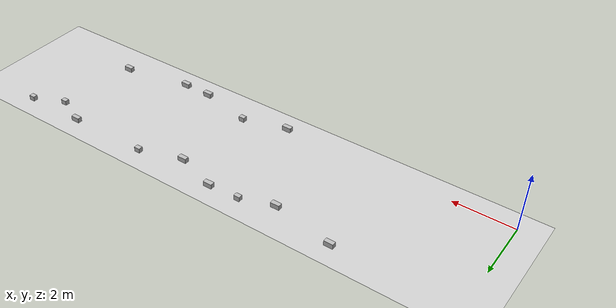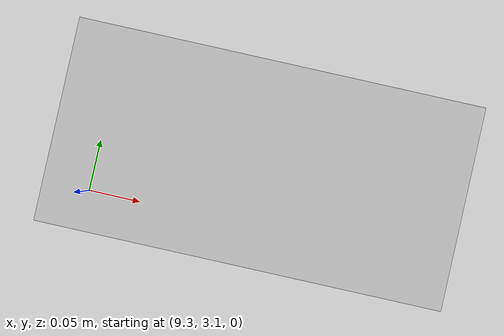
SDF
<sdf version="1.7">
 <world name="test-obstacles">
  <model name="track">
   <static>1</static>
   <link name="track">
    <collision name="collision">
     <geometry><plane><normal>0 0 1</normal><size>20 10</size></plane></geometry>
     <surface><friction><ode><mu>100</mu><mu2>50</mu2></ode></friction></surface>
    </collision>
    <visual name="visual">
     <cast_shadows>0</cast_shadows>
     <geometry><plane><normal>0 0 1</normal><size>20 5</size></plane></geometry>
     <material>
      <script>
       <uri>model://test-parking/materials/scripts</uri>
       <uri>model://test-parking/materials/textures</uri>
       <name>basic_track/Image</name>
      </script>
     </material>
    </visual>
   </link>
   <pose>9.18 1.8 0 0 -0 0</pose>
  </model>
  <light name="sun" type="directional">
   <pose>0 0 10 0 -0 0</pose>
   <diffuse>0.8 0.8 0.8 1</diffuse>
   <specular>0.2 0.2 0.2 1</specular>
   <attenuation>
    <range>1000</range>
    <constant>0.9</constant>
    <linear>0.01</linear>
    <quadratic>0.001</quadratic>
   </attenuation>
   <direction>-0.5 0.1 -0.9</direction>
   <spot><inner_angle>0</inner_angle><outer_angle>0</outer_angle><falloff>0</falloff></spot>
  </light>
  <gravity>0 0 -9.8</gravity>
  <magnetic_field>6e-06 2.3e-05 -4.2e-05</magnetic_field>
  <atmosphere type="adiabatic"/>
  <physics type="ode">
   <max_step_size>0.001</max_step_size>
   <real_time_factor>1</real_time_factor>
   <real_time_update_rate>1000</real_time_update_rate>
  </physics>
  <scene><ambient>0.4 0.4 0.4 1</ambient><background>0.7 0.7 0.7 1</background><shadows>1</shadows></scene>
  <spherical_coordinates>
   <surface_model>EARTH_WGS84</surface_model>
   <latitude_deg>0</latitude_deg>
   <longitude_deg>0</longitude_deg>
   <elevation>0</elevation>
   <heading_deg>0</heading_deg>
  </spherical_coordinates>
  <model name="box">
   <pose>7.74918 -0.001585 0 0 -0 0</pose>
   <static>1</static>
   <link name="link">
    <inertial>
     <mass>1</mass>
     <inertia><ixx>0.083</ixx><ixy>0</ixy><ixz>0</ixz><iyy>0.083</iyy><iyz>0</iyz><izz>0.083</izz></inertia>
    </inertial>
    <collision name="collision"><geometry><box><size>0.3 0.15 0.3</size></box></geometry></collision>
    <visual name="visual">
     <material><script><uri>__default__</uri><name>__default__</name></script></material>
     <geometry><box><size>0.3 0.15 0.3</size></box></geometry>
    </visual>
   </link>
  </model>
  <model name="box_0">
   <pose>9.2239 0.419035 0 0 -0 0</pose>
   <static>1</static>
   <link name="link">
    <inertial>
     <mass>1</mass>
     <inertia><ixx>0.083</ixx><ixy>0</ixy><ixz>0</ixz><iyy>0.083</iyy><iyz>0</iyz><izz>0.083</izz></inertia>
    </inertial>
    <collision name="collision"><geometry><box><size>0.2 0.15 0.3</size></box></geometry></collision>
    <visual name="visual">
     <material><script><uri>__default__</uri><name>__default__</name></script></material>
     <geometry><box><size>0.2 0.15 0.3</size></box></geometry>
    </visual>
   </link>
  </model>
  <model name="box_1">
   <pose>10.9921 0.00085 0 0 -0 0</pose>
   <static>1</static>
   <link name="link">
    <inertial>
     <mass>1</mass>
     <inertia><ixx>0.083</ixx><ixy>0</ixy><ixz>0</ixz><iyy>0.083</iyy><iyz>0</iyz><izz>0.083</izz></inertia>
    </inertial>
    <collision name="collision"><geometry><box><size>0.3 0.15 0.3</size></box></geometry></collision>
    <visual name="visual">
     <material><script><uri>__default__</uri><name>__default__</name></script></material>
     <geometry><box><size>0.3 0.15 0.3</size></box></geometry>
    </visual>
   </link>
  </model>
  <model name="box_2">
   <pose>11.9553 -0.016099 0 0 -0 0</pose>
   <static>1</static>
   <link name="link">
    <inertial>
     <mass>1</mass>
     <inertia><ixx>0.083</ixx><ixy>0</ixy><ixz>0</ixz><iyy>0.083</iyy><iyz>0</iyz><izz>0.083</izz></inertia>
    </inertial>
    <collision name="collision"><geometry><box><size>0.3 0.15 0.3</size></box></geometry></collision>
    <visual name="visual">
     <material><script><uri>__default__</uri><name>__default__</name></script></material>
     <geometry><box><size>0.3 0.15 0.3</size></box></geometry>
    </visual>
   </link>
  </model>
  <model name="box_3">
   <pose>14.2173 0.402956 0 0 -0 0</pose>
   <static>1</static>
   <link name="link">
    <inertial>
     <mass>1</mass>
     <inertia><ixx>0.083</ixx><ixy>0</ixy><ixz>0</ixz><iyy>0.083</iyy><iyz>0</iyz><izz>0.083</izz></inertia>
    </inertial>
    <collision name="collision"><geometry><box><size>0.3 0.15 0.3</size></box></geometry></collision>
    <visual name="visual">
     <material><script><uri>__default__</uri><name>__default__</name></script></material>
     <geometry><box><size>0.3 0.15 0.3</size></box></geometry>
    </visual>
   </link>
  </model>
  <model name="box_4">
   <pose>15.6159 3.62233 0 0 -0 0</pose>
   <static>1</static>
   <link name="link">
    <inertial>
     <mass>1</mass>
     <inertia><ixx>0.083</ixx><ixy>0</ixy><ixz>0</ixz><iyy>0.083</iyy><iyz>0</iyz><izz>0.083</izz></inertia>
    </inertial>
    <collision name="collision"><geometry><box><size>0.2 0.15 0.3</size></box></geometry></collision>
    <visual name="visual">
     <material><script><uri>__default__</uri><name>__default__</name></script></material>
     <geometry><box><size>0.2 0.15 0.3</size></box></geometry>
    </visual>
   </link>
  </model>
  <model name="box_5">
   <pose>14.5763 3.16548 0 0 -0 0</pose>
   <static>1</static>
   <link name="link">
    <inertial>
     <mass>1</mass>
     <inertia><ixx>0.083</ixx><ixy>0</ixy><ixz>0</ixz><iyy>0.083</iyy><iyz>0</iyz><izz>0.083</izz></inertia>
    </inertial>
    <collision name="collision"><geometry><box><size>0.2 0.15 0.3</size></box></geometry></collision>
    <visual name="visual">
     <material><script><uri>__default__</uri><name>__default__</name></script></material>
     <geometry><box><size>0.2 0.15 0.3</size></box></geometry>
    </visual>
   </link>
  </model>
  <model name="box_6">
   <pose>13.5813 3.61876 0 0 -0 0</pose>
   <static>1</static>
   <link name="link">
    <inertial>
     <mass>1</mass>
     <inertia><ixx>0.083</ixx><ixy>0</ixy><ixz>0</ixz><iyy>0.083</iyy><iyz>0</iyz><izz>0.083</izz></inertia>
    </inertial>
    <collision name="collision"><geometry><box><size>0.3 0.15 0.3</size></box></geometry></collision>
    <visual name="visual">
     <material><script><uri>__default__</uri><name>__default__</name></script></material>
     <geometry><box><size>0.3 0.15 0.3</size></box></geometry>
    </visual>
   </link>
  </model>
  <model name="box_7">
   <pose>10.8827 3.61183 0 0 -0 0</pose>
   <static>1</static>
   <link name="link">
    <inertial>
     <mass>1</mass>
     <inertia><ixx>0.083</ixx><ixy>0</ixy><ixz>0</ixz><iyy>0.083</iyy><iyz>0</iyz><izz>0.083</izz></inertia>
    </inertial>
    <collision name="collision"><geometry><box><size>0.2 0.15 0.3</size></box></geometry></collision>
    <visual name="visual">
     <material><script><uri>__default__</uri><name>__default__</name></script></material>
     <geometry><box><size>0.2 0.15 0.3</size></box></geometry>
    </visual>
   </link>
  </model>
  <model name="box_8">
   <pose>9.45563 3.16006 0 0 -0 0</pose>
   <static>1</static>
   <link name="link">
    <inertial>
     <mass>1</mass>
     <inertia><ixx>0.083</ixx><ixy>0</ixy><ixz>0</ixz><iyy>0.083</iyy><iyz>0</iyz><izz>0.083</izz></inertia>
    </inertial>
    <collision name="collision"><geometry><box><size>0.3 0.15 0.3</size></box></geometry></collision>
    <visual name="visual">
     <material><script><uri>__default__</uri><name>__default__</name></script></material>
     <geometry><box><size>0.3 0.15 0.3</size></box></geometry>
    </visual>
   </link>
  </model>
  <model name="box_9">
   <pose>8.09285 3.61922 0 0 -0 0</pose>
   <static>1</static>
   <link name="link">
    <inertial>
     <mass>1</mass>
     <inertia><ixx>0.083</ixx><ixy>0</ixy><ixz>0</ixz><iyy>0.083</iyy><iyz>0</iyz><izz>0.083</izz></inertia>
    </inertial>
    <collision name="collision"><geometry><box><size>0.3 0.15 0.3</size></box></geometry></collision>
    <visual name="visual">
     <material><script><uri>__default__</uri><name>__default__</name></script></material>
     <geometry><box><size>0.3 0.15 0.3</size></box></geometry>
    </visual>
   </link>
  </model>
  <model name="box_10">
   <pose>7.04654 3.57454 0 0 -0 0</pose>
   <static>1</static>
   <link name="link">
    <inertial>
     <mass>1</mass>
     <inertia><ixx>0.083</ixx><ixy>0</ixy><ixz>0</ixz><iyy>0.083</iyy><iyz>0</iyz><izz>0.083</izz></inertia>
    </inertial>
    <collision name="collision"><geometry><box><size>0.2 0.15 0.3</size></box></geometry></collision>
    <visual name="visual">
     <material><script><uri>__default__</uri><name>__default__</name></script></material>
     <geometry><box><size>0.2 0.15 0.3</size></box></geometry>
    </visual>
   </link>
  </model>
  <model name="box_11">
   <pose>5.96311 3.20094 0 0 -0 0</pose>
   <static>1</static>
   <link name="link">
    <inertial>
     <mass>1</mass>
     <inertia><ixx>0.083</ixx><ixy>0</ixy><ixz>0</ixz><iyy>0.083</iyy><iyz>0</iyz><izz>0.083</izz></inertia>
    </inertial>
    <collision name="collision"><geometry><box><size>0.3 0.15 0.3</size></box></geometry></collision>
    <visual name="visual">
     <material><script><uri>__default__</uri><name>__default__</name></script></material>
     <geometry><box><size>0.3 0.15 0.3</size></box></geometry>
    </visual>
   </link>
  </model>
  <model name="box_12">
   <pose>3.90043 3.60622 0 0 -0 0</pose>
   <static>1</static>
   <link name="link">
    <inertial>
     <mass>1</mass>
     <inertia><ixx>0.083</ixx><ixy>0</ixy><ixz>0</ixz><iyy>0.083</iyy><iyz>0</iyz><izz>0.083</izz></inertia>
    </inertial>
    <collision name="collision"><geometry><box><size>0.3 0.15 0.3</size></box></geometry></collision>
    <visual name="visual">
     <material><script><uri>__default__</uri><name>__default__</name></script></material>
     <geometry><box><size>0.3 0.15 0.3</size></box></geometry>
    </visual>
   </link>
  </model>
 </world>
</sdf>
